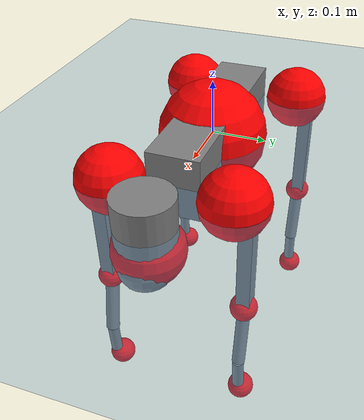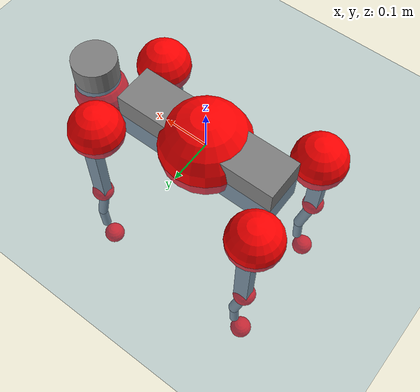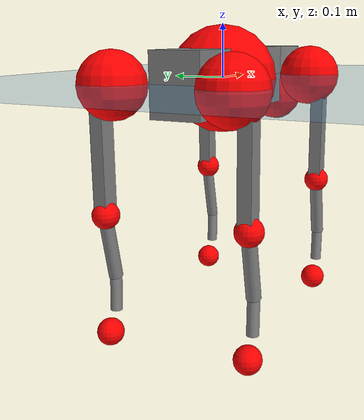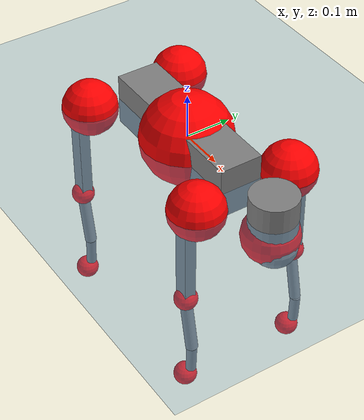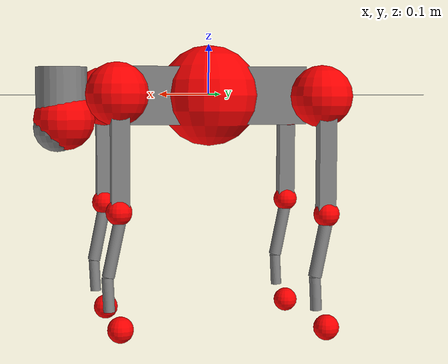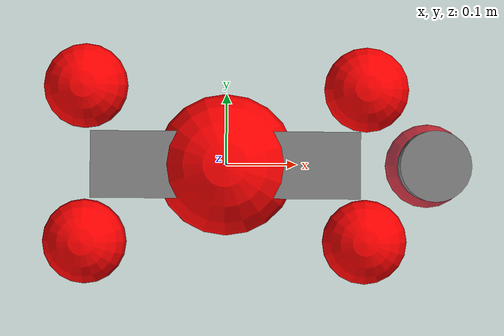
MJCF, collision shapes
<mujoco model="go2">
  <compiler angle="radian" assetdir="assets" balanceinertia="true" inertiafromgeom="false"/>

  <option timestep="0.005" density="1.2" viscosity="2e-05"/>

  <size nkey="1"/>

  <visual>
    <quality shadowsize="8192"/>
    <map shadowclip="0.5"/>
  </visual>

  <default>
    <default class="/">
      <geom contype="0" conaffinity="0" group="1" solref="-1000 -80"/>
      <site size="0.01 0.005 0.005" group="5"/>
      <general forcelimited="true" biastype="affine" gainprm="20" biasprm="0 -20 -0.5"/>
      <default class="go2">
        <joint armature="0.01" damping="0.01" frictionloss="0.2"/>
        <geom condim="1" margin="0.001"/>
        <default class="visual">
          <geom type="mesh" group="2"/>
        </default>
        <default class="collision">
          <geom group="3"/>
          <default class="foot">
            <geom size="0.022 0 0" condim="6" priority="1" friction="0.8 0.02 0.01" solimp="0.015 1 0.022"/>
          </default>
        </default>
        <default class="reward_collision_sphere">
          <geom group="5" rgba="1 0 0 1"/>
        </default>
      </default>
    </default>
  </default>

  <asset>
    <texture type="skybox" colorspace="auto" name="//unnamed_texture_0" builtin="gradient" rgb1="0.95 0.95 0.95" rgb2="0.95 0.95 0.95" width="100" height="600"/>
    <texture type="2d" colorspace="auto" name="texplane" builtin="checker" rgb1="0.345 0.575 0.748" rgb2="0.345 0.575 0.748" markrgb="1 1 1" width="512" height="512"/>
    <material name="MatPlane" class="/" texture="texplane" texuniform="true" texrepeat="2 2" specular="0.9"/>
    <material name="metal" class="/" rgba="0.9 0.95 0.95 1"/>
    <material name="black" class="/" rgba="0 0 0 1"/>
    <material name="white" class="/"/>
    <material name="gray" class="/" rgba="0.671705 0.692426 0.77427 1"/>
    <mesh name="base_0" class="/" file="base_0.obj"/>
    <mesh name="base_1" class="/" file="base_1.obj"/>
    <mesh name="base_2" class="/" file="base_2.obj"/>
    <mesh name="base_3" class="/" file="base_3.obj"/>
    <mesh name="base_4" class="/" file="base_4.obj"/>
    <mesh name="hip_0" class="/" file="hip_0.obj"/>
    <mesh name="hip_1" class="/" file="hip_1.obj"/>
    <mesh name="thigh_0" class="/" file="thigh_0.obj"/>
    <mesh name="thigh_1" class="/" file="thigh_1.obj"/>
    <mesh name="thigh_mirror_0" class="/" file="thigh_mirror_0.obj"/>
    <mesh name="thigh_mirror_1" class="/" file="thigh_mirror_1.obj"/>
    <mesh name="calf_0" class="/" file="calf_0.obj"/>
    <mesh name="calf_1" class="/" file="calf_1.obj"/>
    <mesh name="calf_mirror_0" class="/" file="calf_mirror_0.obj"/>
    <mesh name="calf_mirror_1" class="/" file="calf_mirror_1.obj"/>
    <mesh name="foot" class="/" file="foot.obj"/>
  </asset>

  <worldbody>
    <geom name="floor" class="/" size="100 100 0.125" type="plane" group="0" material="MatPlane"/>
    <light name="toplight_shadow" class="/" pos="0 0 5" dir="0.0990148 0.0990148 -0.990148" type="directional" ambient="0.04 0.04 0.04" diffuse="0.55 0.55 0.55" specular="0.12 0.12 0.12"/>
    <light name="toplight_fill" class="/" pos="0 0 5" dir="0.0990148 0.0990148 -0.990148" type="directional" castshadow="false" ambient="0.04 0.04 0.04" diffuse="0.3 0.3 0.3" specular="0.08 0.08 0.08"/>
    <body name="trunk" childclass="go2" pos="-0.000695528 -0.000434746 -0.00246914" quat="1 -6.4378e-05 -0.000187839 2.62219e-05">
      <inertial pos="0.0197055 -0.00137735 -0.00300236" quat="-0.00993053 0.710617 -0.0072901 0.703471" mass="7.22665" diaginertia="0.134971 0.0717047 0.031938"/>
      <joint name="//unnamed_joint_0" type="free" armature="0" damping="0" frictionloss="0"/>
      <geom name="//unnamed_geom_1" class="visual" material="black" mesh="base_0"/>
      <geom name="//unnamed_geom_2" class="visual" material="black" mesh="base_1"/>
      <geom name="//unnamed_geom_3" class="visual" material="black" mesh="base_2"/>
      <geom name="//unnamed_geom_4" class="visual" material="white" mesh="base_3"/>
      <geom name="//unnamed_geom_5" class="visual" material="gray" mesh="base_4"/>
      <geom name="trunk_1" class="collision" size="0.189518 0.0471025 0.0574298" type="box"/>
      <geom name="trunk_2" class="collision" size="0.050377 0.0453393" pos="0.29547 0 0.010497" type="cylinder"/>
      <geom name="trunk_3" class="collision" size="0.0473544" pos="0.303764 0 -0.0629817"/>
      <geom name="//unnamed_geom_9" class="reward_collision_sphere" size="0.100754"/>
      <geom name="//unnamed_geom_10" class="reward_collision_sphere" size="0.0604524" pos="0.290287 0 -0.0472363"/>
      <site name="imu" pos="-0.0257555 -5.40266e-05 0.0506866" size="0.0100754"/>
      <camera name="track" pos="0 -1.87238 0" quat="0.707107 0.707107 0 0" mode="trackcom"/>
      <camera name="ego_camera" pos="0.323462 0 0.0472363" quat="-0.5 -0.5 0.5 0.5"/>
      <body name="FL_hip" pos="0.200153 0.0423903 0.00326878" quat="0.999999 -0.000645304 -0.00114268 0.000280555">
        <inertial pos="-0.00450905 -0.000489043 0.000716085" quat="0.504358 0.501398 0.507114 0.486887" mass="0.693903" diaginertia="0.00106283 0.000435715 0.000636083"/>
        <joint name="FL_hip_joint" pos="0 0 0" axis="0.999966 -0.00707817 -0.00430256" range="-1.03116 1.10618" armature="0.0103204" damping="0.0164552" frictionloss="0.195382"/>
        <geom name="//unnamed_geom_11" class="visual" material="metal" mesh="hip_0"/>
        <geom name="//unnamed_geom_12" class="visual" material="gray" mesh="hip_1"/>
        <geom name="//unnamed_geom_13" class="collision" size="0.0463469 0.0201508" pos="0 0.074895 0" quat="0.707107 0.707107 0 0" type="cylinder"/>
        <geom name="//unnamed_geom_14" class="reward_collision_sphere" size="0.0604524" pos="0 0.0655332 0"/>
        <body name="FL_thigh" pos="-0.00161247 0.0887813 0.00223548" quat="1 -0.000289605 2.22087e-06 -8.64225e-05">
          <inertial pos="-0.00134225 -0.0213162 -0.0332995" quat="0.831796 0.0765053 -0.0191306 0.549451" mass="1.20413" diaginertia="0.00696207 0.00414376 0.00109903"/>
          <joint name="FL_thigh_joint" pos="0 0 0" axis="-0.000930732 0.999974 -0.00708203" stiffness="0.00633819" range="-1.59936 3.52121" armature="0.0102777" damping="0" frictionloss="0.188996"/>
          <geom name="//unnamed_geom_15" class="visual" material="metal" mesh="thigh_0"/>
          <geom name="//unnamed_geom_16" class="visual" material="gray" mesh="thigh_1"/>
          <geom name="//unnamed_geom_17" class="collision" size="0.107303 0.0123424 0.0171282" pos="0 0 -0.111793" quat="0.707107 0 0.707107 0" type="box"/>
          <body name="FL_calf" pos="0.00182813 -0.00108728 -0.223669" quat="0.999999 0.000996527 0.000174143 0.000216539">
            <inertial pos="0.00509326 -0.000286277 -0.149731" quat="0.707153 -0.00457657 -0.00376335 0.707036" mass="0.24116" diaginertia="0.00172203 0.00105093 6.44286e-05"/>
            <joint name="FL_calf_joint" pos="0 0 0" axis="0.0273128 0.999279 0.0263707" range="-2.77602 -0.786296" armature="0.0114733" damping="0.00465812" frictionloss="0.228575"/>
            <geom name="//unnamed_geom_18" class="visual" material="gray" mesh="calf_0"/>
            <geom name="//unnamed_geom_19" class="visual" material="black" mesh="calf_1"/>
            <geom name="FL_calf0" class="collision" size="0.0120905 0.0604524" pos="0.00829391 0 -0.0629817" quat="0.994493 0 -0.104807 0" type="cylinder"/>
            <geom name="//unnamed_geom_21" class="collision" size="0.0110829 0.0327451" pos="0.0207348 0 -0.155355" quat="0.999688 0 0.0249974 0" type="cylinder"/>
            <geom name="//unnamed_geom_22" class="visual" pos="0 0 -0.223585" quat="1 0 0 0" material="black" mesh="foot"/>
            <geom name="FL_foot" class="foot" size="0.0152455" pos="-0.00207348 0 -0.223585"/>
            <geom name="//unnamed_geom_24" class="reward_collision_sphere" size="0.0251885"/>
            <geom name="//unnamed_geom_25" class="reward_collision_sphere" size="0.0251885" pos="-0.00207348 0 -0.223585"/>
            <site name="FL_foot" class="foot" pos="-0.00207348 0 -0.223585" size="0.0100754"/>
          </body>
        </body>
      </body>
      <body name="FR_hip" pos="0.198318 -0.0435953 -0.00140166" quat="1 1.56684e-06 5.48034e-06 -2.31261e-06">
        <inertial pos="-0.00418376 -0.00116857 -0.00123333" quat="0.500118 0.504993 0.498398 0.496452" mass="0.70348" diaginertia="0.00105742 0.000458566 0.000632158"/>
        <joint name="FR_hip_joint" pos="0 0 0" axis="0.999921 -0.00380203 -0.0120159" range="-1.06994 1.05145" armature="0.00945959" damping="0" frictionloss="0.189667"/>
        <geom name="//unnamed_geom_26" class="visual" pos="0 -9.8883e-10 -4.2413e-08" quat="4.63268e-05 1 0 0" material="metal" mesh="hip_0"/>
        <geom name="//unnamed_geom_27" class="visual" pos="0 -1.60301e-09 1.04903e-07" quat="4.63268e-05 1 0 0" material="gray" mesh="hip_1"/>
        <geom name="//unnamed_geom_28" class="collision" size="0.0463469 0.0201508" pos="0 -0.074895 0" quat="0.707107 0.707107 0 0" type="cylinder"/>
        <geom name="//unnamed_geom_29" class="reward_collision_sphere" size="0.0604524" pos="0 -0.0655332 0"/>
        <body name="FR_thigh" pos="-0.00253515 -0.0885749 -0.00199122" quat="1 -8.67669e-05 7.10053e-05 0.000391195">
          <inertial pos="-0.00374552 0.0210672 -0.0335617" quat="0.550061 -0.0231216 0.0786418 0.831092" mass="1.13853" diaginertia="0.00688019 0.00422571 0.00112789"/>
          <joint name="FR_thigh_joint" pos="0 0 0" axis="0.0023949 -0.999983 -0.00540212" range="-3.49154 1.62027" armature="0.0102484" damping="0" frictionloss="0.192559"/>
          <geom name="//unnamed_geom_30" class="visual" material="metal" mesh="thigh_mirror_0"/>
          <geom name="//unnamed_geom_31" class="visual" material="gray" mesh="thigh_mirror_1"/>
          <geom name="//unnamed_geom_32" class="collision" size="0.107303 0.0123424 0.0171282" pos="0 0 -0.111793" quat="0.707107 0 0.707107 0" type="box"/>
          <body name="FR_calf" pos="0.0010259 -0.00045394 -0.220693" quat="1 -0.000279301 0.000277069 -0.000106219">
            <inertial pos="0.00628097 0.00180877 -0.1477" quat="0.695582 0.0026435 -0.00282319 0.718436" mass="0.245665" diaginertia="0.0017795 0.00102522 6.67356e-05"/>
            <joint name="FR_calf_joint" pos="0 0 0" axis="-0.00736519 -0.999967 0.00343909" range="0.781754 2.77433" armature="0.00902263" damping="0.0101535" frictionloss="0.1988"/>
            <geom name="//unnamed_geom_33" class="visual" material="gray" mesh="calf_mirror_0"/>
            <geom name="//unnamed_geom_34" class="visual" material="black" mesh="calf_mirror_1"/>
            <geom name="FR_calf0" class="collision" size="0.013098 0.0604524" pos="0.0103674 0 -0.0629817" quat="0.995004 0 -0.0998334 0" type="cylinder"/>
            <geom name="//unnamed_geom_36" class="collision" size="0.0110829 0.0327451" pos="0.0207348 0 -0.155355" quat="0.999688 0 0.0249974 0" type="cylinder"/>
            <geom name="//unnamed_geom_37" class="visual" pos="0 0 -0.223585" quat="1 0 0 0" material="black" mesh="foot"/>
            <geom name="FR_foot" class="foot" size="0.0232008" pos="-0.00207348 0 -0.223585"/>
            <geom name="//unnamed_geom_39" class="reward_collision_sphere" size="0.0251885"/>
            <geom name="//unnamed_geom_40" class="reward_collision_sphere" size="0.0251885" pos="-0.00207348 0 -0.223585"/>
            <site name="FR_foot" class="foot" pos="-0.00207348 0 -0.223585" size="0.0100754"/>
          </body>
        </body>
      </body>
      <body name="RL_hip" pos="-0.200488 0.0461957 -0.00133778" quat="0.999999 -0.000791147 -0.000389829 -0.000596004">
        <inertial pos="0.00824748 0.00288176 -0.00116704" quat="0.514479 0.489144 0.500239 0.495792" mass="0.698862" diaginertia="0.00100834 0.000421291 0.000590432"/>
        <joint name="RL_hip_joint" pos="0 0 0" axis="-0.999992 -0.00333408 0.0021506" range="-0.998102 1.06385" armature="0.00946892" damping="0" frictionloss="0.21139"/>
        <geom name="//unnamed_geom_41" class="visual" pos="1.12877e-10 0 2.21266e-08" quat="4.63268e-05 0 1 0" material="metal" mesh="hip_0"/>
        <geom name="//unnamed_geom_42" class="visual" pos="1.82988e-10 0 1.96231e-08" quat="4.63268e-05 0 1 0" material="gray" mesh="hip_1"/>
        <geom name="//unnamed_geom_43" class="collision" size="0.0463469 0.0201508" pos="0 0.074895 0" quat="0.707107 0.707107 0 0" type="cylinder"/>
        <geom name="//unnamed_geom_44" class="reward_collision_sphere" size="0.0604524" pos="0 0.0655332 0"/>
        <body name="RL_thigh" pos="-0.00267125 0.089594 -0.00214582" quat="1 5.2907e-05 -3.38204e-05 -2.45727e-05">
          <inertial pos="-0.00347496 -0.0188505 -0.034467" quat="0.831525 0.0861638 -0.020057 0.548398" mass="1.18213" diaginertia="0.00714745 0.00406083 0.00114896"/>
          <joint name="RL_thigh_joint" pos="0 0 0" axis="-0.000173717 0.999999 -0.00120562" stiffness="0.0114942" range="-0.532473 4.54573" armature="0.00865369" damping="0" frictionloss="0.225504"/>
          <geom name="//unnamed_geom_45" class="visual" material="metal" mesh="thigh_0"/>
          <geom name="//unnamed_geom_46" class="visual" material="gray" mesh="thigh_1"/>
          <geom name="//unnamed_geom_47" class="collision" size="0.107303 0.0123424 0.0171282" pos="0 0 -0.111793" quat="0.707107 0 0.707107 0" type="box"/>
          <body name="RL_calf" pos="-0.00260288 -0.00234911 -0.226395" quat="0.999999 -0.000643118 4.8939e-05 -0.000925768">
            <inertial pos="0.00637128 -0.000637555 -0.147294" quat="0.712824 0.00239277 -0.00670106 0.701306" mass="0.247174" diaginertia="0.00176841 0.001052 6.80822e-05"/>
            <joint name="RL_calf_joint" pos="0 0 0" axis="0.00588976 0.999976 -0.00373323" range="-2.73218 -0.834151" armature="0.00910454" damping="0.00326391" frictionloss="0.227977"/>
            <geom name="//unnamed_geom_48" class="visual" material="gray" mesh="calf_0"/>
            <geom name="//unnamed_geom_49" class="visual" material="black" mesh="calf_1"/>
            <geom name="RL_calf0" class="collision" size="0.013098 0.0604524" pos="0.0103674 0 -0.0629817" quat="0.995004 0 -0.0998334 0" type="cylinder"/>
            <geom name="//unnamed_geom_51" class="collision" size="0.0110829 0.0327451" pos="0.0207348 0 -0.155355" quat="0.999688 0 0.0249974 0" type="cylinder"/>
            <geom name="//unnamed_geom_52" class="visual" pos="0 0 -0.223585" quat="1 0 0 0" material="black" mesh="foot"/>
            <geom name="RL_foot" class="foot" size="0.0178385" pos="-0.00207348 0 -0.223585"/>
            <geom name="//unnamed_geom_54" class="reward_collision_sphere" size="0.0251885"/>
            <geom name="//unnamed_geom_55" class="reward_collision_sphere" size="0.0251885" pos="-0.00207348 0 -0.223585"/>
            <site name="RL_foot" class="foot" pos="-0.00207348 0 -0.223585" size="0.0100754"/>
          </body>
        </body>
      </body>
      <body name="RR_hip" pos="-0.201524 -0.0448631 -0.00310793" quat="0.999999 -0.000237915 0.000117294 -0.00100668">
        <inertial pos="0.0048151 -0.00128965 0.00134482" quat="0.498981 0.498321 0.503796 0.498882" mass="0.666912" diaginertia="0.00102363 0.000414899 0.000588468"/>
        <joint name="RR_hip_joint" pos="0 0 0" axis="-0.999996 0.00261845 -0.00135899" range="-1.07843 1.0455" armature="0.00986922" damping="0.00407436" frictionloss="0.206019"/>
        <geom name="//unnamed_geom_56" class="visual" pos="-1.16359e-10 -9.8883e-10 6.45395e-08" quat="2.14617e-09 4.63268e-05 4.63268e-05 -1" material="metal" mesh="hip_0"/>
        <geom name="//unnamed_geom_57" class="visual" pos="-1.74378e-10 -1.60301e-09 -8.52803e-08" quat="2.14617e-09 4.63268e-05 4.63268e-05 -1" material="gray" mesh="hip_1"/>
        <geom name="//unnamed_geom_58" class="collision" size="0.0463469 0.0201508" pos="0 -0.074895 0" quat="0.707107 0.707107 0 0" type="cylinder"/>
        <geom name="//unnamed_geom_59" class="reward_collision_sphere" size="0.0604524" pos="0 -0.0655332 0"/>
        <body name="RR_thigh" pos="-0.000708454 -0.0924631 0.000109372" quat="1 -0.000129728 -0.000588899 2.09744e-05">
          <inertial pos="-0.00139355 0.0199511 -0.0337058" quat="0.552087 -0.0207681 0.0844668 0.829237" mass="1.18389" diaginertia="0.0070385 0.00417868 0.0011435"/>
          <joint name="RR_thigh_joint" pos="0 0 0" axis="-0.0116549 -0.99993 -0.00195151" stiffness="0.00408501" range="-4.55593 0.535048" armature="0.00875152" damping="0" frictionloss="0.203952"/>
          <geom name="//unnamed_geom_60" class="visual" material="metal" mesh="thigh_mirror_0"/>
          <geom name="//unnamed_geom_61" class="visual" material="gray" mesh="thigh_mirror_1"/>
          <geom name="//unnamed_geom_62" class="collision" size="0.107303 0.0123424 0.0171282" pos="0 0 -0.111793" quat="0.707107 0 0.707107 0" type="box"/>
          <body name="RR_calf" pos="-0.000634747 -0.002247 -0.221952" quat="0.999999 -0.00112348 0.00033082 0.000629143">
            <inertial pos="0.00375448 0.000925669 -0.149578" quat="0.708575 -0.00821396 0.000827522 0.705587" mass="0.243372" diaginertia="0.00170443 0.00106433 6.61913e-05"/>
            <joint name="RR_calf_joint" pos="0 0 0" axis="0.00235764 -0.999989 0.00395253" stiffness="0.00701668" range="0.824661 2.68664" armature="0.00997818" damping="0.0257912" frictionloss="0.203079"/>
            <geom name="//unnamed_geom_63" class="visual" material="gray" mesh="calf_mirror_0"/>
            <geom name="//unnamed_geom_64" class="visual" material="black" mesh="calf_mirror_1"/>
            <geom name="RR_calf0" class="collision" size="0.013098 0.0604524" pos="0.0103674 0 -0.0629817" quat="0.995004 0 -0.0998334 0" type="cylinder"/>
            <geom name="//unnamed_geom_66" class="collision" size="0.0110829 0.0327451" pos="0.0207348 0 -0.155355" quat="0.999688 0 0.0249974 0" type="cylinder"/>
            <geom name="//unnamed_geom_67" class="visual" pos="0 0 -0.223585" quat="1 0 0 0" material="black" mesh="foot"/>
            <geom name="RR_foot" class="foot" size="0.0200292" pos="-0.00207348 0 -0.223585"/>
            <geom name="//unnamed_geom_69" class="reward_collision_sphere" size="0.0251885"/>
            <geom name="//unnamed_geom_70" class="reward_collision_sphere" size="0.0251885" pos="-0.00207348 0 -0.223585"/>
            <site name="RR_foot" class="foot" pos="-0.00207348 0 -0.223585" size="0.0100754"/>
          </body>
        </body>
      </body>
    </body>
  </worldbody>

  <contact>
    <pair class="/" geom1="floor" geom2="FL_foot" name="//unnamed_contact_0"/>
    <pair class="/" geom1="floor" geom2="FR_foot" name="//unnamed_contact_1"/>
    <pair class="/" geom1="floor" geom2="RL_foot" name="//unnamed_contact_2"/>
    <pair class="/" geom1="floor" geom2="RR_foot" name="//unnamed_contact_3"/>
  </contact>

  <actuator>
    <general name="FL_hip" class="/" joint="FL_hip_joint" forcerange="-23.5017 23.5017" gainprm="20.8671" biasprm="0 -20.8671 -0.481115"/>
    <general name="FL_thigh" class="/" joint="FL_thigh_joint" forcerange="-21.3621 21.3621" gainprm="20.8671" biasprm="0 -20.8671 -0.481115"/>
    <general name="FL_calf" class="/" joint="FL_calf_joint" forcerange="-42.9954 42.9954" gainprm="20.8671" biasprm="0 -20.8671 -0.481115"/>
    <general name="FR_hip" class="/" joint="FR_hip_joint" forcerange="-21.4043 21.4043" gainprm="20.8671" biasprm="0 -20.8671 -0.481115"/>
    <general name="FR_thigh" class="/" joint="FR_thigh_joint" forcerange="-26.2958 26.2958" gainprm="20.8671" biasprm="0 -20.8671 -0.481115"/>
    <general name="FR_calf" class="/" joint="FR_calf_joint" forcerange="-43.2023 43.2023" gainprm="20.8671" biasprm="0 -20.8671 -0.481115"/>
    <general name="RL_hip" class="/" joint="RL_hip_joint" forcerange="-23.9826 23.9826" gainprm="20.8671" biasprm="0 -20.8671 -0.481115"/>
    <general name="RL_thigh" class="/" joint="RL_thigh_joint" forcerange="-22.8464 22.8464" gainprm="20.8671" biasprm="0 -20.8671 -0.481115"/>
    <general name="RL_calf" class="/" joint="RL_calf_joint" forcerange="-43.4339 43.4339" gainprm="20.8671" biasprm="0 -20.8671 -0.481115"/>
    <general name="RR_hip" class="/" joint="RR_hip_joint" forcerange="-21.8335 21.8335" gainprm="20.8671" biasprm="0 -20.8671 -0.481115"/>
    <general name="RR_thigh" class="/" joint="RR_thigh_joint" forcerange="-23.5567 23.5567" gainprm="20.8671" biasprm="0 -20.8671 -0.481115"/>
    <general name="RR_calf" class="/" joint="RR_calf_joint" forcerange="-48.4558 48.4558" gainprm="20.8671" biasprm="0 -20.8671 -0.481115"/>
  </actuator>

  <sensor>
    <gyro site="imu" name="imu_angular_velocity"/>
    <velocimeter site="imu" name="imu_linear_velocity"/>
    <framelinvel objtype="site" objname="FL_foot" name="FL_foot_global_linear_velocity"/>
    <framelinvel objtype="site" objname="FR_foot" name="FR_foot_global_linear_velocity"/>
    <framelinvel objtype="site" objname="RL_foot" name="RL_foot_global_linear_velocity"/>
    <framelinvel objtype="site" objname="RR_foot" name="RR_foot_global_linear_velocity"/>
  </sensor>

  <keyframe>
    <key name="home" qpos="0 0 0.325 1 0 0 0 0.1 0.8 -1.5 -0.1 -0.8 1.5 -0.1 0.8 -1.5 0.1 -0.8 1.5"/>
  </keyframe>
</mujoco>
